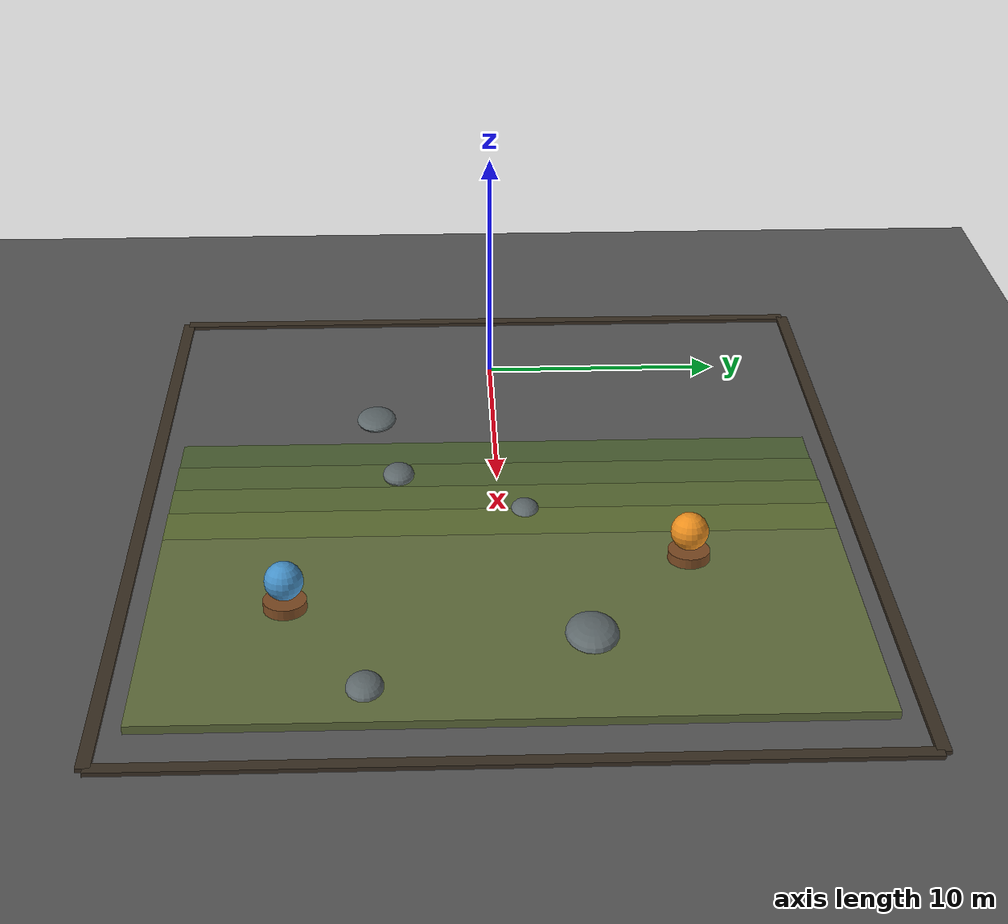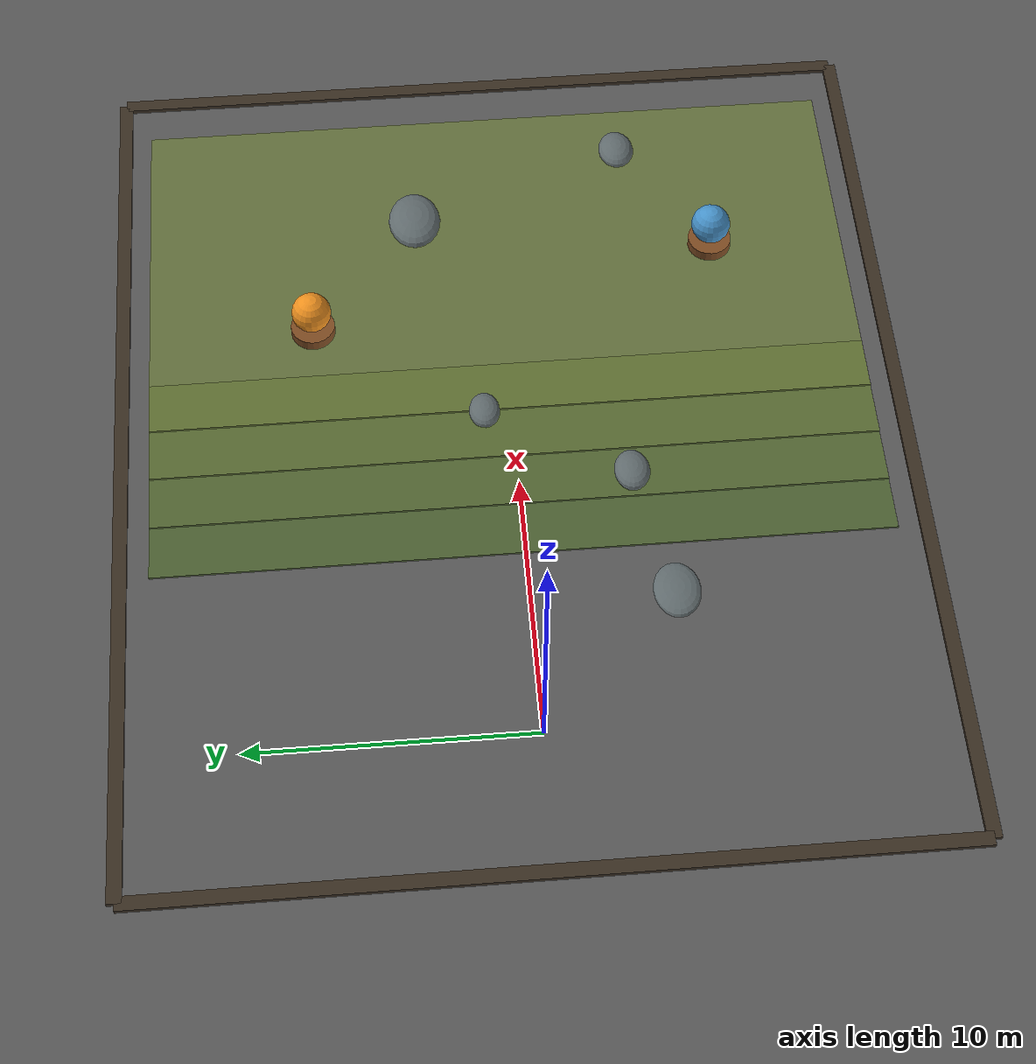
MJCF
<mujoco model="unnamed_model">
  <default>
    <default class="/"/>
  </default>
  <asset>
    <texture name="//unnamed_texture_0" type="2d" builtin="checker" rgb1="0.29999999999999999 0.29999999999999999 0.29999999999999999" rgb2="0.40000000000000002 0.40000000000000002 0.40000000000000002" width="300" height="300"/>
    <material name="grid" class="/" texture="//unnamed_texture_0" texrepeat="10 10" reflectance="0.10000000000000001" rgba="1 1 1 1"/>
  </asset>
  <worldbody>
    <light name="light_top" class="/" mode="trackcom" directional="true" castshadow="false" active="true" pos="0 0 80" dir="0 0 -1" attenuation="0.5 0 0" cutoff="100" exponent="1" ambient="0.20000000000000001 0.20000000000000001 0.20000000000000001" diffuse="0.69999999999999996 0.69999999999999996 0.69999999999999996" specular="0.29999999999999999 0.29999999999999999 0.29999999999999999"/>
    <light name="light_bottom" class="/" mode="trackcom" directional="true" castshadow="false" active="true" pos="0 0 -80" dir="0 0 1" attenuation="0.5 0 0" cutoff="100" exponent="1" ambient="0.20000000000000001 0.20000000000000001 0.20000000000000001" diffuse="0.69999999999999996 0.69999999999999996 0.69999999999999996" specular="0.29999999999999999 0.29999999999999999 0.29999999999999999"/>
    <geom name="ground" class="/" type="plane" conaffinity="0" size="100 100 1" material="grid" friction="1 0.0050000000000000001 0.0001"/>
    <geom name="terrace_0" class="/" type="box" size="1 13 0.040000000000000001" rgba="0.29999999999999999 0.38 0.20000000000000001 1" friction="1 0.0050000000000000001 0.0001" pos="8 0 0.040000000000000001"/>
    <geom name="terrace_1" class="/" type="box" size="1 13 0.080000000000000002" rgba="0.32500000000000001 0.40000000000000002 0.20000000000000001 1" friction="1 0.0050000000000000001 0.0001" pos="10 0 0.080000000000000002"/>
    <geom name="terrace_2" class="/" type="box" size="1 13 0.12" rgba="0.34999999999999998 0.41999999999999998 0.20000000000000001 1" friction="1 0.0050000000000000001 0.0001" pos="12 0 0.12"/>
    <geom name="terrace_3" class="/" type="box" size="1 13 0.16" rgba="0.375 0.44 0.20000000000000001 1" friction="1 0.0050000000000000001 0.0001" pos="14 0 0.16"/>
    <geom name="upper_bed" class="/" type="box" size="6 13 0.16" rgba="0.39000000000000001 0.44 0.23999999999999999 1" pos="21 0 0.16"/>
    <geom name="rock_0" class="/" type="ellipsoid" size="1.1000000000000001 0.82500000000000007 0.26000000000000001" rgba="0.38 0.41999999999999998 0.42999999999999999 1" friction="1 0.0050000000000000001 0.0001" pos="5 -5 0.17999999999999999"/>
    <geom name="rock_1" class="/" type="ellipsoid" size="0.84999999999999998 0.63749999999999996 0.33000000000000002" rgba="0.38 0.41999999999999998 0.42999999999999999 1" friction="1 0.0050000000000000001 0.0001" pos="10 -4 0.25"/>
    <geom name="rock_2" class="/" type="ellipsoid" size="0.75 0.5625 0.33000000000000002" rgba="0.38 0.41999999999999998 0.42999999999999999 1" friction="1 0.0050000000000000001 0.0001" pos="13 1 0.25"/>
    <geom name="rock_3" class="/" type="ellipsoid" size="1.3 0.97500000000000009 0.42999999999999999" rgba="0.38 0.41999999999999998 0.42999999999999999 1" friction="1 0.0050000000000000001 0.0001" pos="22 3 0.34999999999999998"/>
    <geom name="rock_4" class="/" type="ellipsoid" size="0.90000000000000002 0.67500000000000004 0.38" rgba="0.38 0.41999999999999998 0.42999999999999999 1" friction="1 0.0050000000000000001 0.0001" pos="25 -5 0.29999999999999999"/>
    <geom name="border_0" class="/" type="box" size="17 0.25 0.080000000000000002" rgba="0.23000000000000001 0.19 0.14000000000000001 1" pos="12 -14 0.080000000000000002"/>
    <geom name="border_1" class="/" type="box" size="17 0.25 0.080000000000000002" rgba="0.23000000000000001 0.19 0.14000000000000001 1" pos="12 14 0.080000000000000002"/>
    <geom name="border_2" class="/" type="box" size="0.25 14 0.080000000000000002" rgba="0.23000000000000001 0.19 0.14000000000000001 1" pos="29 0 0.080000000000000002"/>
    <geom name="border_3" class="/" type="box" size="0.25 14 0.080000000000000002" rgba="0.23000000000000001 0.19 0.14000000000000001 1" pos="-5 0 0.080000000000000002"/>
    <geom name="odor_pedestal_0" class="/" type="cylinder" contype="0" conaffinity="0" size="0.80000000000000004 0.20000000000000001" rgba="0.5 0.29999999999999999 0.14000000000000001 1" pos="17 7 0.52000000000000002"/>
    <geom name="odor_bead_0" class="/" type="sphere" contype="0" conaffinity="0" size="0.71999999999999997" rgba="0.93999999999999995 0.56999999999999995 0.12 1" pos="17 7 1.5"/>
    <geom name="odor_pedestal_1" class="/" type="cylinder" contype="0" conaffinity="0" size="0.80000000000000004 0.20000000000000001" rgba="0.5 0.29999999999999999 0.14000000000000001 1" pos="20 -8 0.52000000000000002"/>
    <geom name="odor_bead_1" class="/" type="sphere" contype="0" conaffinity="0" size="0.71999999999999997" rgba="0.28000000000000003 0.57999999999999996 0.80000000000000004 1" pos="20 -8 1.5"/>
  </worldbody>
</mujoco>
